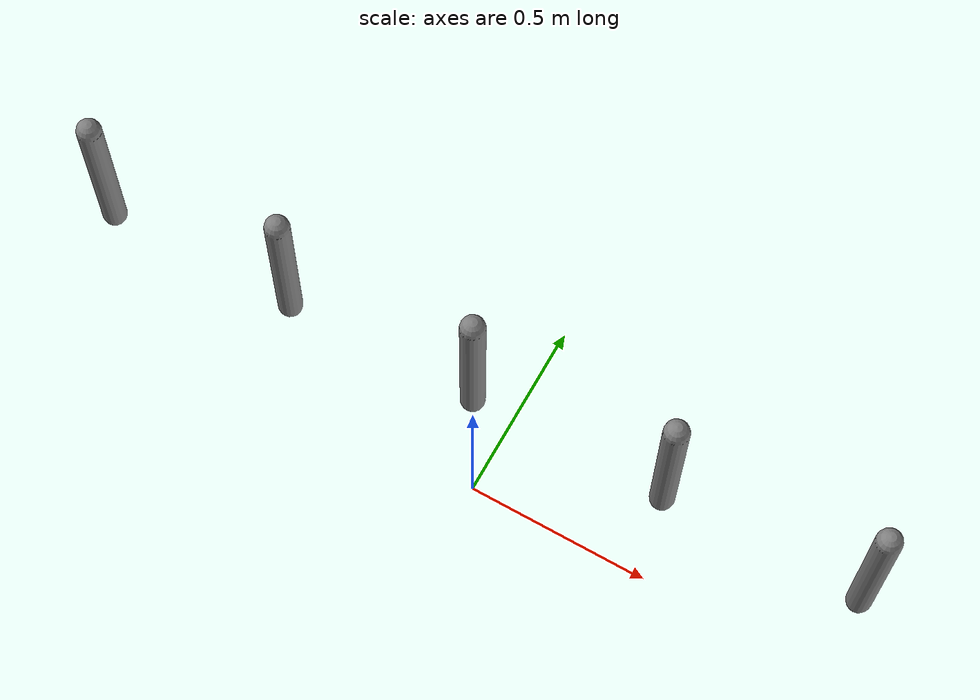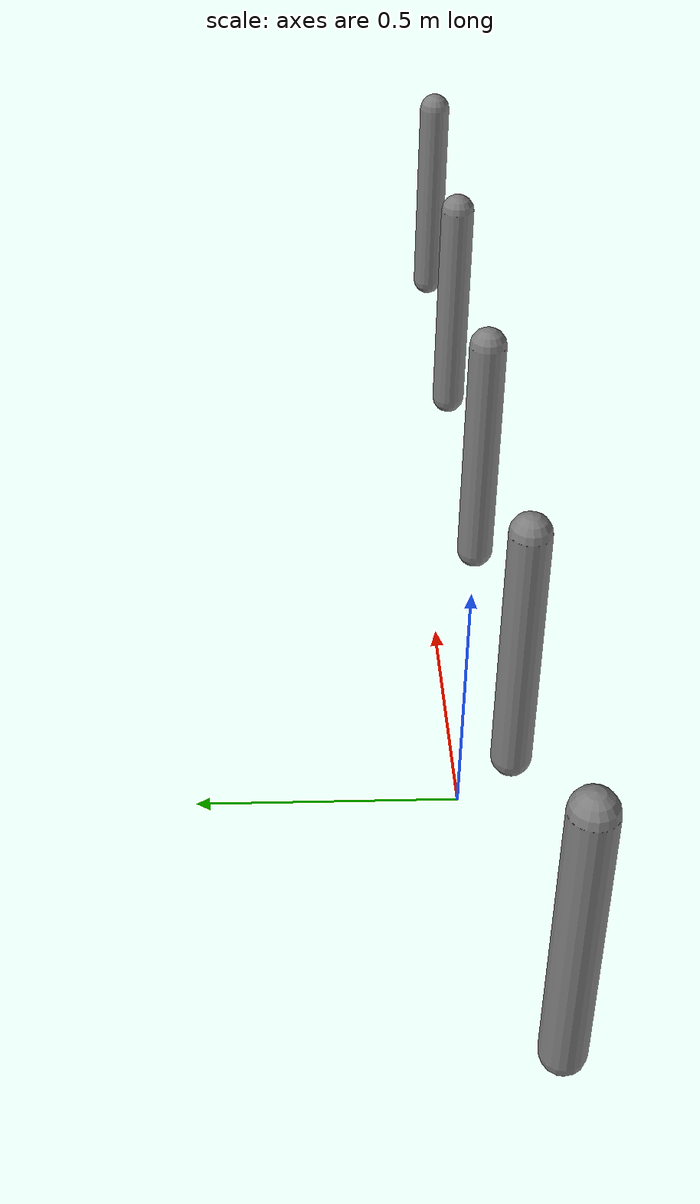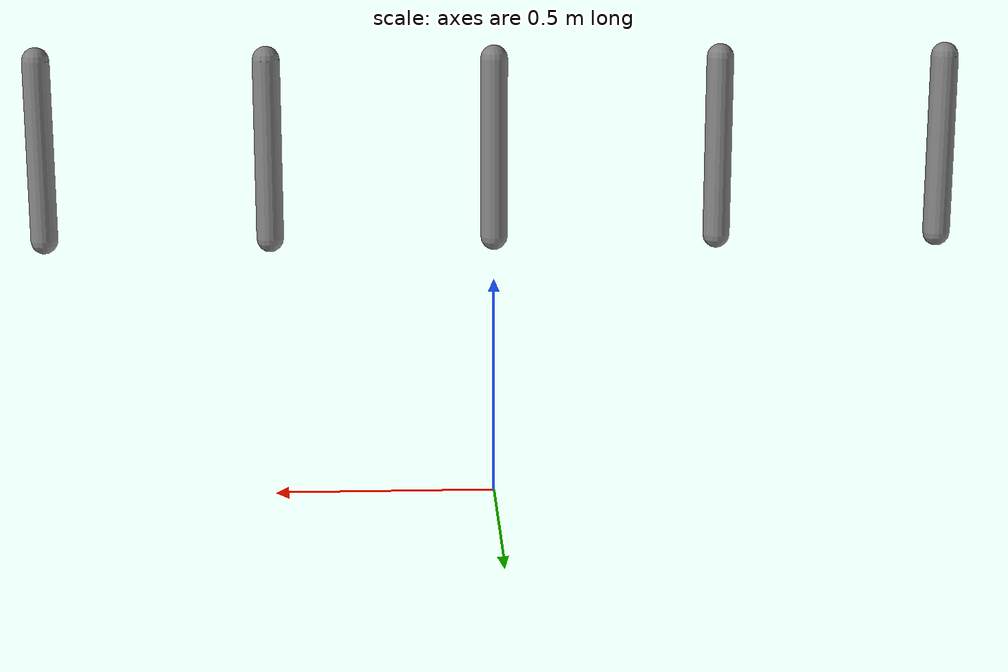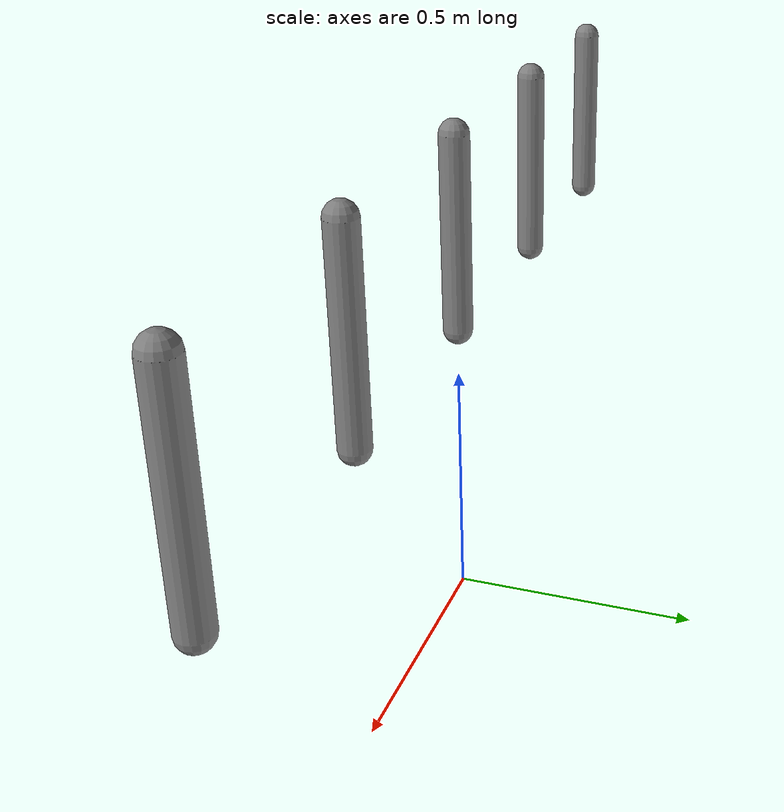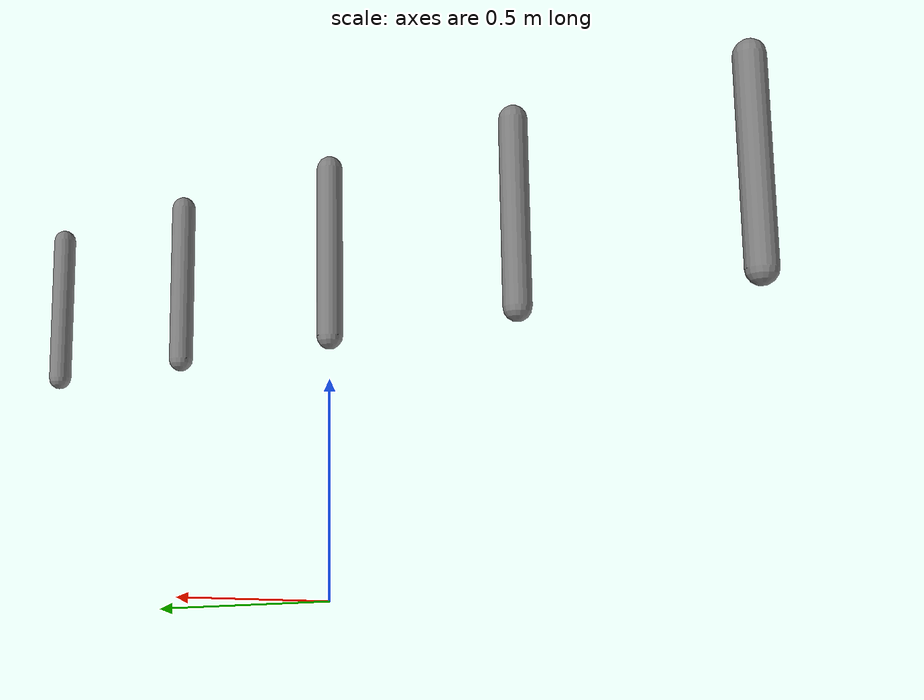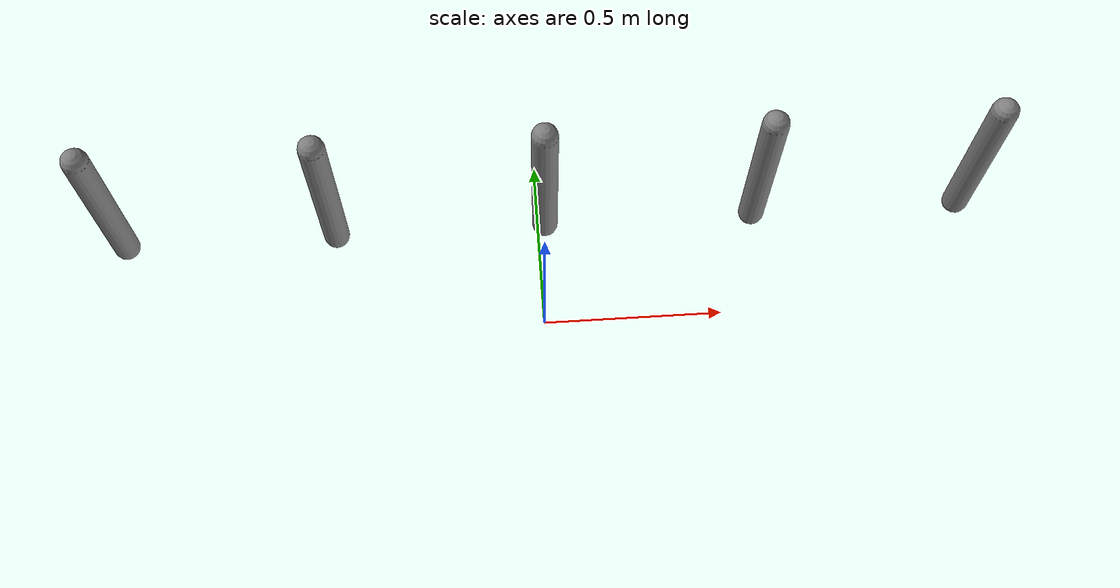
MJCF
<mujoco model="joint_passive_bench">
  <compiler angle="radian"/>
  <option timestep="0.001" gravity="0 0 0" integrator="implicitfast"/>
  <default>
    <joint axis="0 1 0"/>
    <geom type="capsule" fromto="0 0 0 0 0 -.4" size=".03" mass="1" contype="0" conaffinity="0"/>
  </default>
  <worldbody>
    <body pos="-1 0 1"><joint name="plain"/><geom/></body>
    <body pos="-.5 0 1"><joint name="damped" damping="1"/><geom/></body>
    <body pos="0 0 1"><joint name="dry" frictionloss=".5"/><geom/></body>
    <body pos=".5 0 1"><joint name="spring" stiffness="5" springref="0"/><geom/></body>
    <body pos="1 0 1"><joint name="armature" armature="1"/><geom/></body>
  </worldbody>
</mujoco>
